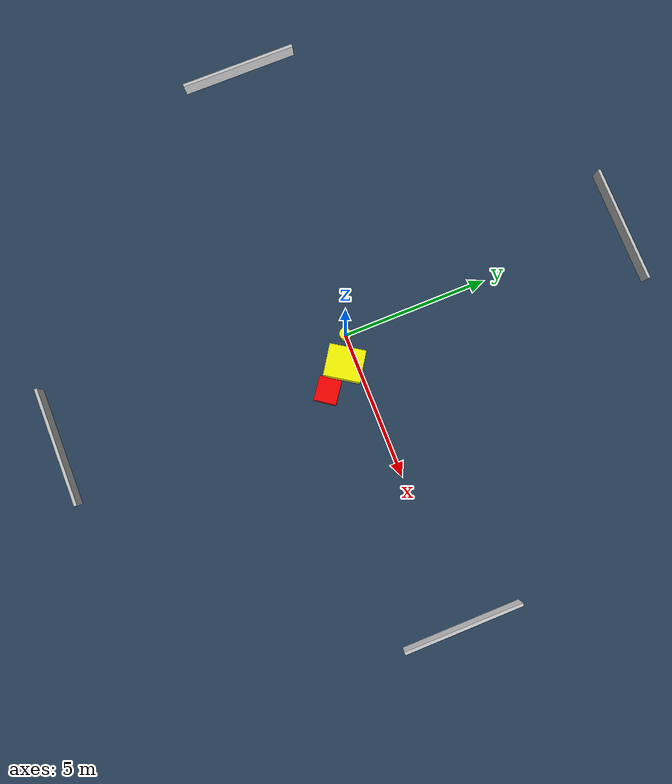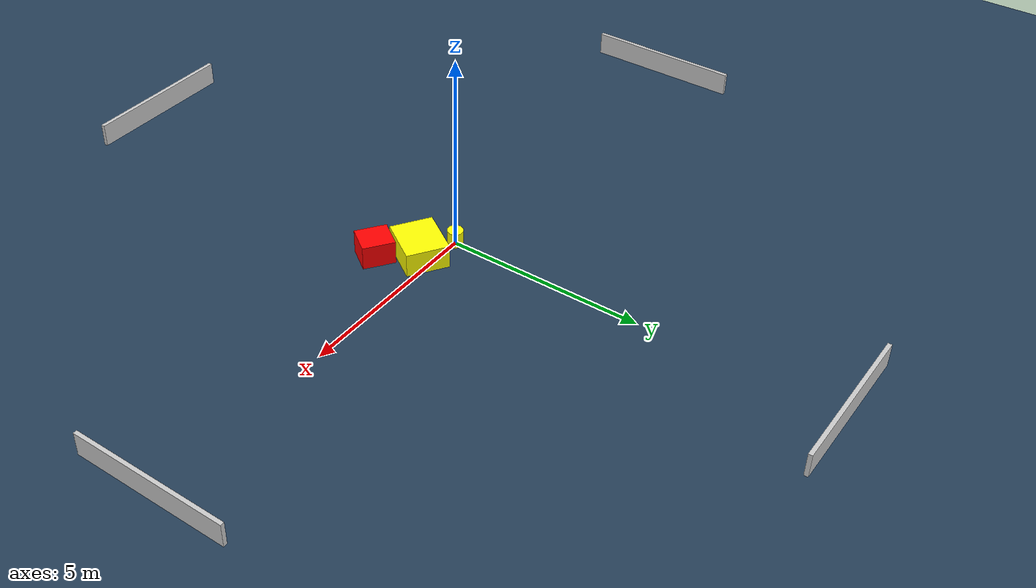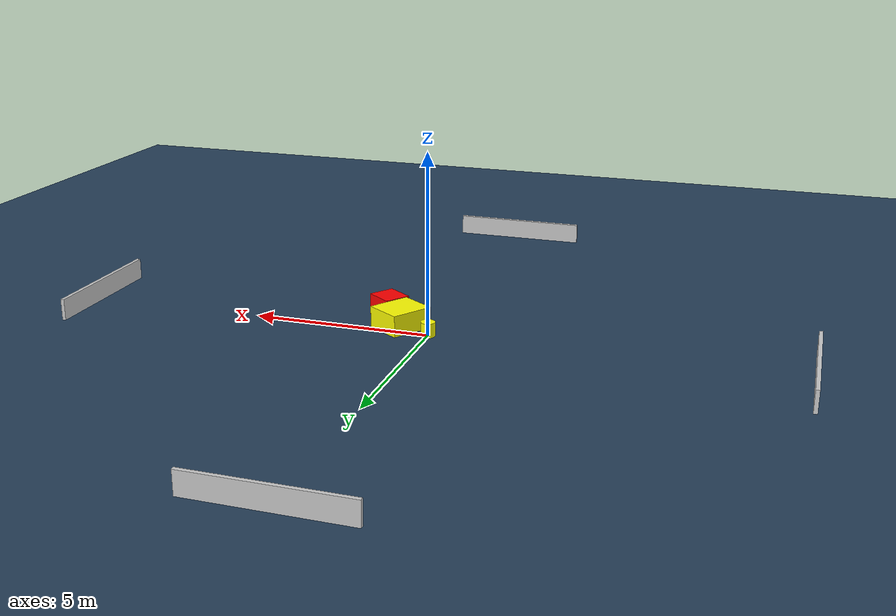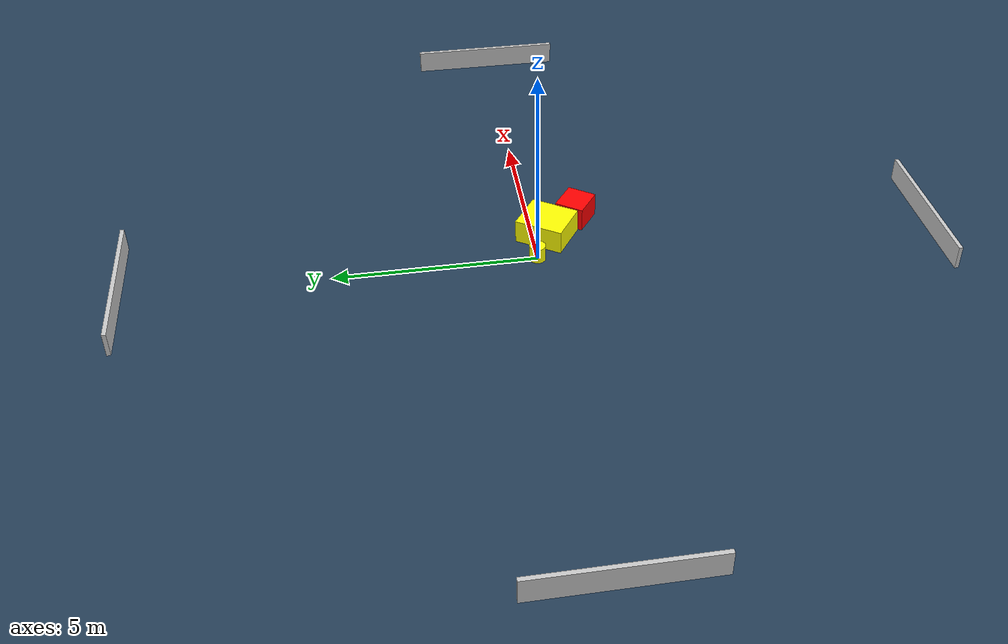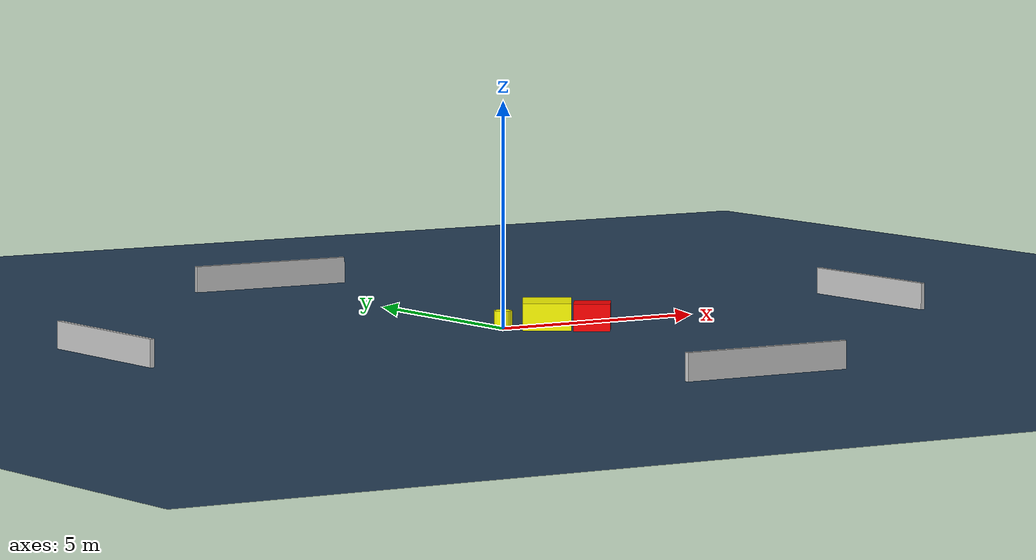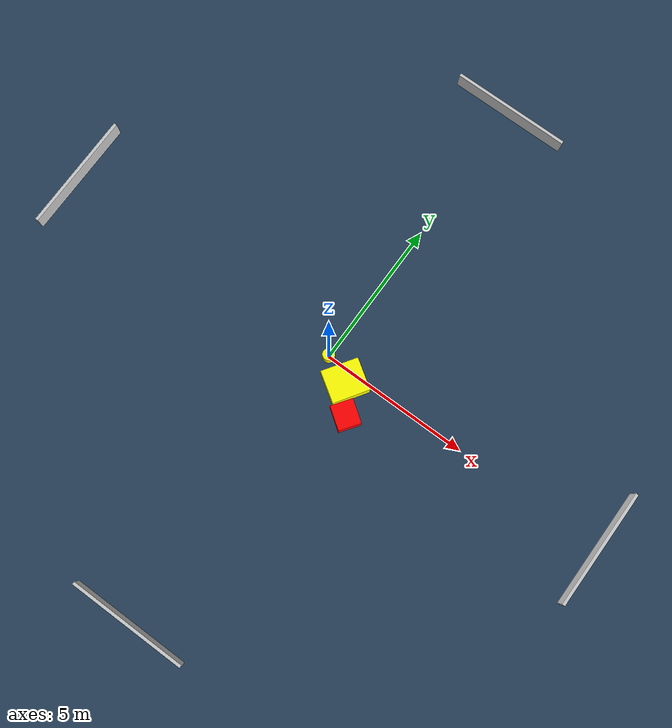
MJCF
<?xml version="1.0" ?>
<mujoco model="generated_environment">
  <option timestep="0.01" integrator="RK4" cone="elliptic"/>
  <default>
    <geom density="1"/>
  </default>
  <asset>
    <texture builtin="gradient" height="3072" name="skybox" rgb1="0.3 0.5 0.7" rgb2="0 0 0" type="skybox" width="512"/>
    <texture builtin="checker" height="300" name="groundplane" rgb1="0.2 0.3 0.4" rgb2="0.1 0.2 0.3" type="2d" width="300"/>
    <material name="groundplane" reflectance="0.2" texrepeat="5 5" texture="groundplane"/>
  </asset>
  <worldbody>
    <light dir="0 0 -1" directional="true" pos="0 0 1.5"/>
    <geom condim="3" friction="0.5 0.005 0.001" material="groundplane" name="floor" pos="0 0 0" size="0 0 0.05" type="plane"/>
    <body name="walls">
      <geom name="wall_1" condim="4" pos="-10.0 0.0 0.3" rgba="0.800000011920929 0.800000011920929 0.800000011920929 1.0" size="0.05 2.0 0.3" type="box"/>
      <geom name="wall_2" condim="4" pos="10.0 0.0 0.3" rgba="0.800000011920929 0.800000011920929 0.800000011920929 1.0" size="0.05 2.0 0.3" type="box"/>
      <geom name="wall_3" condim="4" pos="0.0 -10.0 0.3" rgba="0.800000011920929 0.800000011920929 0.800000011920929 1.0" size="2.0 0.05 0.3" type="box"/>
      <geom name="wall_4" condim="4" pos="0.0 10.0 0.3" rgba="0.800000011920929 0.800000011920929 0.800000011920929 1.0" size="2.0 0.05 0.3" type="box"/>
    </body>
    <body name="robot">
      <joint name="joint_x" type="slide" pos="0 0 0" axis="1 0 0"/>
      <joint name="joint_y" type="slide" pos="0 0 0" axis="0 1 0"/>
      <geom name="robot" type="cylinder" pos="0.0 0.0 0.2" size="0.2 0.2 0.0" mass="5.0" friction="1.0 0.005 0.0001" condim="4" rgba="1.0 1.0 0.0 1.0"/>
    </body>
    <body name="obstacle_1_movable">
      <geom name="obstacle_1_movable" condim="4" pos="0.9101501387175733 -0.37958337052741453 0.3" euler="0 0 236.65517016177412" friction="0.0 0.005 0.001" rgba="1.0 1.0 0.0 1.0" size="0.613755965099057 0.535361351350216 0.3" type="box" mass="0.1"/>
      <joint type="free"/>
    </body>
    <body name="obstacle_2_static">
      <geom name="obstacle_2_static" condim="4" pos="1.537230709867583 -1.2234584691655104 0.3" euler="0 0 234.5803728943309" friction="0.0 0.005 0.001" rgba="1.0 0.0 0.0 1.0" size="0.3712084746206181 0.40536469168762324 0.3" type="box"/>
    </body>
  </worldbody>
  <actuator>
    <motor name="actuator_x" joint="joint_x" gear="1" ctrlrange="-1 1"/>
    <motor name="actuator_y" joint="joint_y" gear="1" ctrlrange="-1 1"/>
  </actuator>
</mujoco>
